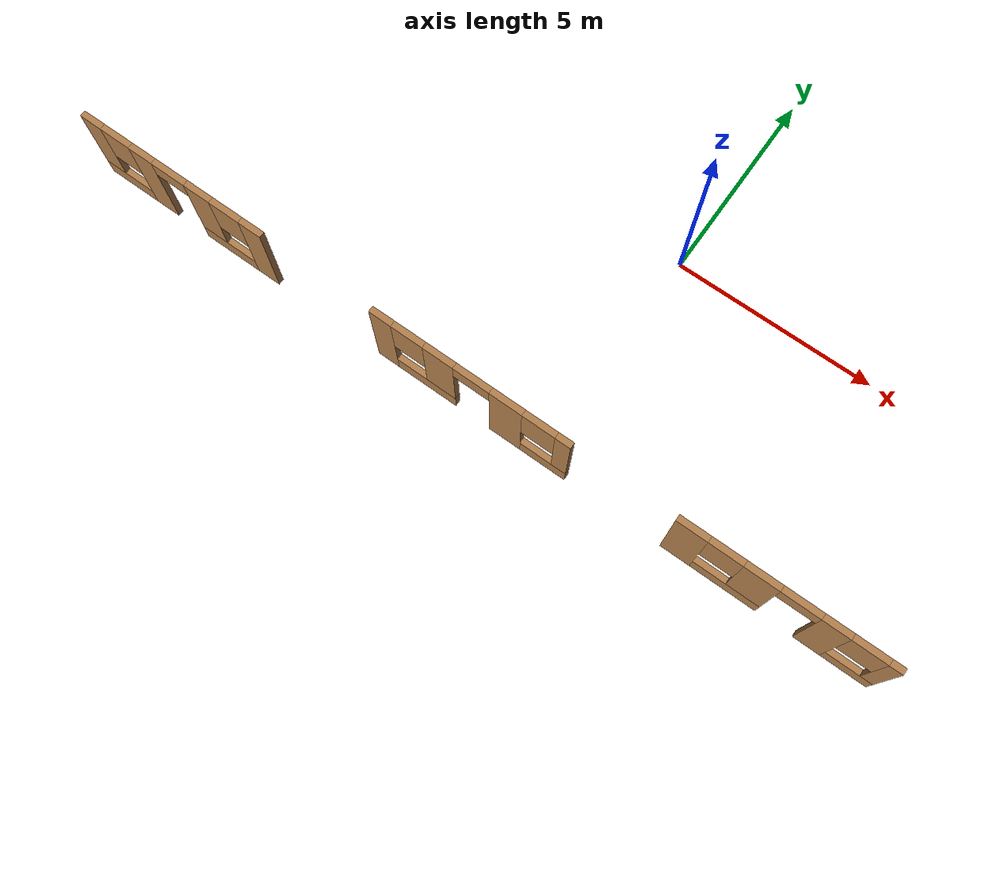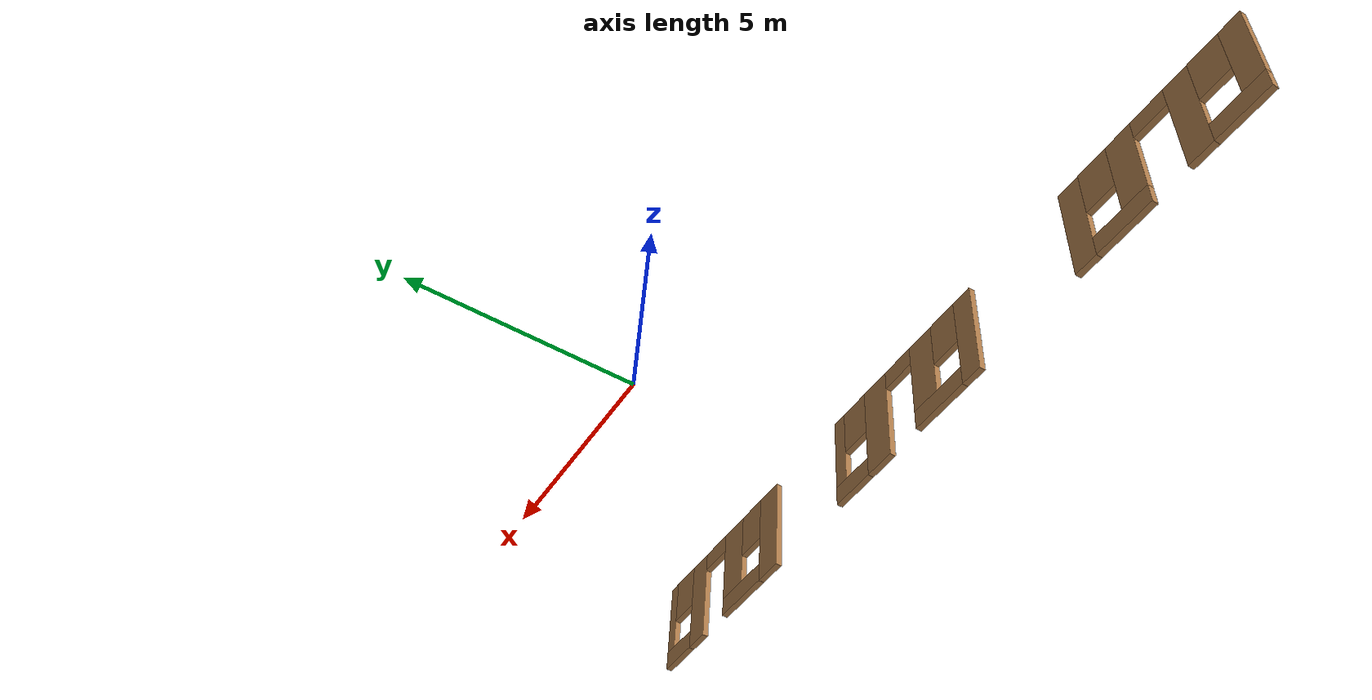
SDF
<?xml version='1.0'?>
<sdf version='1.7'>
  <model name='mail_delivery'>
    <pose>-2.01308 -2.84519 0 0 -0 0</pose>
    <link name='Wall_12'>
      <pose>0.204522 -2.7702 0 0 -0 0</pose>
      <visual name='Wall_12_Visual_0'>
        <pose>-2.22008 0 1.25 0 -0 0</pose>
        <geometry>
          <box>
            <size>0.55984 0.15 2.5</size>
          </box>
        </geometry>
        <material>
          <script>
            <uri>file://media/materials/scripts/gazebo.material</uri>
            <name>Gazebo/Wood</name>
          </script>
          <ambient>1 1 1 1</ambient>
        </material>
        <meta>
          <layer>0</layer>
        </meta>
      </visual>
      <collision name='Wall_12_Collision_0'>
        <geometry>
          <box>
            <size>0.55984 0.15 2.5</size>
          </box>
        </geometry>
        <pose>-2.22008 0 1.25 0 -0 0</pose>
      </collision>
      <visual name='Wall_12_Visual_1'>
        <pose>0.924853 0 1.25 0 -0 0</pose>
        <geometry>
          <box>
            <size>0.803125 0.15 2.5</size>
          </box>
        </geometry>
        <material>
          <script>
            <uri>file://media/materials/scripts/gazebo.material</uri>
            <name>Gazebo/Wood</name>
          </script>
          <ambient>1 1 1 1</ambient>
        </material>
        <meta>
          <layer>0</layer>
        </meta>
      </visual>
      <collision name='Wall_12_Collision_1'>
        <geometry>
          <box>
            <size>0.803125 0.15 2.5</size>
          </box>
        </geometry>
        <pose>0.924853 0 1.25 0 -0 0</pose>
      </collision>
      <visual name='Wall_12_Visual_2'>
        <pose>-1.15844 0 0.25 0 -0 0</pose>
        <geometry>
          <box>
            <size>1.56345 0.15 0.5</size>
          </box>
        </geometry>
        <material>
          <script>
            <uri>file://media/materials/scripts/gazebo.material</uri>
            <name>Gazebo/Wood</name>
          </script>
          <ambient>1 1 1 1</ambient>
        </material>
        <meta>
          <layer>0</layer>
        </meta>
      </visual>
      <collision name='Wall_12_Collision_2'>
        <geometry>
          <box>
            <size>1.56345 0.15 0.5</size>
          </box>
        </geometry>
        <pose>-1.15844 0 0.25 0 -0 0</pose>
      </collision>
      <visual name='Wall_12_Visual_3'>
        <pose>1.91321 0 0.25 0 -0 0</pose>
        <geometry>
          <box>
            <size>1.17359 0.15 0.5</size>
          </box>
        </geometry>
        <material>
          <script>
            <uri>file://media/materials/scripts/gazebo.material</uri>
            <name>Gazebo/Wood</name>
          </script>
          <ambient>1 1 1 1</ambient>
        </material>
        <meta>
          <layer>0</layer>
        </meta>
      </visual>
      <collision name='Wall_12_Collision_3'>
        <geometry>
          <box>
            <size>1.17359 0.15 0.5</size>
          </box>
        </geometry>
        <pose>1.91321 0 0.25 0 -0 0</pose>
      </collision>
      <visual name='Wall_12_Visual_4'>
        <pose>-0.758435 0 1.5 0 -0 0</pose>
        <geometry>
          <box>
            <size>0.76345 0.15 2</size>
          </box>
        </geometry>
        <material>
          <script>
            <uri>file://media/materials/scripts/gazebo.material</uri>
            <name>Gazebo/Wood</name>
          </script>
          <ambient>1 1 1 1</ambient>
        </material>
        <meta>
          <layer>0</layer>
        </meta>
      </visual>
      <collision name='Wall_12_Collision_4'>
        <geometry>
          <box>
            <size>0.76345 0.15 2</size>
          </box>
        </geometry>
        <pose>-0.758435 0 1.5 0 -0 0</pose>
      </collision>
      <visual name='Wall_12_Visual_5'>
        <pose>-0.758435 0 1.5 0 -0 0</pose>
        <geometry>
          <box>
            <size>0.76345 0.15 2</size>
          </box>
        </geometry>
        <material>
          <script>
            <uri>file://media/materials/scripts/gazebo.material</uri>
            <name>Gazebo/Wood</name>
          </script>
          <ambient>1 1 1 1</ambient>
        </material>
        <meta>
          <layer>0</layer>
        </meta>
      </visual>
      <collision name='Wall_12_Collision_5'>
        <geometry>
          <box>
            <size>0.76345 0.15 2</size>
          </box>
        </geometry>
        <pose>-0.758435 0 1.5 0 -0 0</pose>
      </collision>
      <visual name='Wall_12_Visual_6'>
        <pose>2.31321 0 1.5 0 -0 0</pose>
        <geometry>
          <box>
            <size>0.373585 0.15 2</size>
          </box>
        </geometry>
        <material>
          <script>
            <uri>file://media/materials/scripts/gazebo.material</uri>
            <name>Gazebo/Wood</name>
          </script>
          <ambient>1 1 1 1</ambient>
        </material>
        <meta>
          <layer>0</layer>
        </meta>
      </visual>
      <collision name='Wall_12_Collision_6'>
        <geometry>
          <box>
            <size>0.373585 0.15 2</size>
          </box>
        </geometry>
        <pose>2.31321 0 1.5 0 -0 0</pose>
      </collision>
      <visual name='Wall_12_Visual_7'>
        <pose>-1.54016 0 1.9 0 -0 0</pose>
        <geometry>
          <box>
            <size>0.8 0.15 1.2</size>
          </box>
        </geometry>
        <material>
          <script>
            <uri>file://media/materials/scripts/gazebo.material</uri>
            <name>Gazebo/Wood</name>
          </script>
          <ambient>1 1 1 1</ambient>
        </material>
        <meta>
          <layer>0</layer>
        </meta>
      </visual>
      <collision name='Wall_12_Collision_7'>
        <geometry>
          <box>
            <size>0.8 0.15 1.2</size>
          </box>
        </geometry>
        <pose>-1.54016 0 1.9 0 -0 0</pose>
      </collision>
      <visual name='Wall_12_Visual_8'>
        <pose>1.72642 0 1.9 0 -0 0</pose>
        <geometry>
          <box>
            <size>0.8 0.15 1.2</size>
          </box>
        </geometry>
        <material>
          <script>
            <uri>file://media/materials/scripts/gazebo.material</uri>
            <name>Gazebo/Wood</name>
          </script>
          <ambient>1 1 1 1</ambient>
        </material>
        <meta>
          <layer>0</layer>
        </meta>
      </visual>
      <collision name='Wall_12_Collision_8'>
        <geometry>
          <box>
            <size>0.8 0.15 1.2</size>
          </box>
        </geometry>
        <pose>1.72642 0 1.9 0 -0 0</pose>
      </collision>
      <visual name='Wall_12_Visual_9'>
        <pose>0.07329 0 2.25 0 -0 0</pose>
        <geometry>
          <box>
            <size>0.9 0.15 0.5</size>
          </box>
        </geometry>
        <material>
          <script>
            <uri>file://media/materials/scripts/gazebo.material</uri>
            <name>Gazebo/Wood</name>
          </script>
          <ambient>1 1 1 1</ambient>
        </material>
        <meta>
          <layer>0</layer>
        </meta>
      </visual>
      <collision name='Wall_12_Collision_9'>
        <geometry>
          <box>
            <size>0.9 0.15 0.5</size>
          </box>
        </geometry>
        <pose>0.07329 0 2.25 0 -0 0</pose>
      </collision>
      <visual name='Wall_12_Visual_10'>
        <pose>0.07329 0 2.25 0 -0 0</pose>
        <geometry>
          <box>
            <size>0.9 0.15 0.5</size>
          </box>
        </geometry>
        <material>
          <script>
            <uri>file://media/materials/scripts/gazebo.material</uri>
            <name>Gazebo/Wood</name>
          </script>
          <ambient>1 1 1 1</ambient>
        </material>
        <meta>
          <layer>0</layer>
        </meta>
      </visual>
      <collision name='Wall_12_Collision_10'>
        <geometry>
          <box>
            <size>0.9 0.15 0.5</size>
          </box>
        </geometry>
        <pose>0.07329 0 2.25 0 -0 0</pose>
      </collision>
    </link>
    <link name='Wall_16'>
      <pose>-7.65681 -2.7702 0 0 -0 3.14159</pose>
      <visual name='Wall_16_Visual_0'>
        <pose>-2.20364 0 1.25 0 -0 0</pose>
        <geometry>
          <box>
            <size>0.592727 0.15 2.5</size>
          </box>
        </geometry>
        <material>
          <script>
            <uri>file://media/materials/scripts/gazebo.material</uri>
            <name>Gazebo/Wood</name>
          </script>
          <ambient>1 1 1 1</ambient>
        </material>
        <meta>
          <layer>0</layer>
        </meta>
      </visual>
      <collision name='Wall_16_Collision_0'>
        <geometry>
          <box>
            <size>0.592727 0.15 2.5</size>
          </box>
        </geometry>
        <pose>-2.20364 0 1.25 0 -0 0</pose>
      </collision>
      <visual name='Wall_16_Visual_1'>
        <pose>0.812265 0 1.25 0 -0 0</pose>
        <geometry>
          <box>
            <size>0.644425 0.15 2.5</size>
          </box>
        </geometry>
        <material>
          <script>
            <uri>file://media/materials/scripts/gazebo.material</uri>
            <name>Gazebo/Wood</name>
          </script>
          <ambient>1 1 1 1</ambient>
        </material>
        <meta>
          <layer>0</layer>
        </meta>
      </visual>
      <collision name='Wall_16_Collision_1'>
        <geometry>
          <box>
            <size>0.644425 0.15 2.5</size>
          </box>
        </geometry>
        <pose>0.812265 0 1.25 0 -0 0</pose>
      </collision>
      <visual name='Wall_16_Visual_2'>
        <pose>-1.15861 0 0.25 0 -0 0</pose>
        <geometry>
          <box>
            <size>1.49733 0.15 0.5</size>
          </box>
        </geometry>
        <material>
          <script>
            <uri>file://media/materials/scripts/gazebo.material</uri>
            <name>Gazebo/Wood</name>
          </script>
          <ambient>1 1 1 1</ambient>
        </material>
        <meta>
          <layer>0</layer>
        </meta>
      </visual>
      <collision name='Wall_16_Collision_2'>
        <geometry>
          <box>
            <size>1.49733 0.15 0.5</size>
          </box>
        </geometry>
        <pose>-1.15861 0 0.25 0 -0 0</pose>
      </collision>
      <visual name='Wall_16_Visual_3'>
        <pose>1.81724 0 0.25 0 -0 0</pose>
        <geometry>
          <box>
            <size>1.36552 0.15 0.5</size>
          </box>
        </geometry>
        <material>
          <script>
            <uri>file://media/materials/scripts/gazebo.material</uri>
            <name>Gazebo/Wood</name>
          </script>
          <ambient>1 1 1 1</ambient>
        </material>
        <meta>
          <layer>0</layer>
        </meta>
      </visual>
      <collision name='Wall_16_Collision_3'>
        <geometry>
          <box>
            <size>1.36552 0.15 0.5</size>
          </box>
        </geometry>
        <pose>1.81724 0 0.25 0 -0 0</pose>
      </collision>
      <visual name='Wall_16_Visual_4'>
        <pose>-0.75861 0 1.5 0 -0 0</pose>
        <geometry>
          <box>
            <size>0.697325 0.15 2</size>
          </box>
        </geometry>
        <material>
          <script>
            <uri>file://media/materials/scripts/gazebo.material</uri>
            <name>Gazebo/Wood</name>
          </script>
          <ambient>1 1 1 1</ambient>
        </material>
        <meta>
          <layer>0</layer>
        </meta>
      </visual>
      <collision name='Wall_16_Collision_4'>
        <geometry>
          <box>
            <size>0.697325 0.15 2</size>
          </box>
        </geometry>
        <pose>-0.75861 0 1.5 0 -0 0</pose>
      </collision>
      <visual name='Wall_16_Visual_5'>
        <pose>-0.75861 0 1.5 0 -0 0</pose>
        <geometry>
          <box>
            <size>0.697325 0.15 2</size>
          </box>
        </geometry>
        <material>
          <script>
            <uri>file://media/materials/scripts/gazebo.material</uri>
            <name>Gazebo/Wood</name>
          </script>
          <ambient>1 1 1 1</ambient>
        </material>
        <meta>
          <layer>0</layer>
        </meta>
      </visual>
      <collision name='Wall_16_Collision_5'>
        <geometry>
          <box>
            <size>0.697325 0.15 2</size>
          </box>
        </geometry>
        <pose>-0.75861 0 1.5 0 -0 0</pose>
      </collision>
      <visual name='Wall_16_Visual_6'>
        <pose>2.21724 0 1.5 0 -0 0</pose>
        <geometry>
          <box>
            <size>0.565523 0.15 2</size>
          </box>
        </geometry>
        <material>
          <script>
            <uri>file://media/materials/scripts/gazebo.material</uri>
            <name>Gazebo/Wood</name>
          </script>
          <ambient>1 1 1 1</ambient>
        </material>
        <meta>
          <layer>0</layer>
        </meta>
      </visual>
      <collision name='Wall_16_Collision_6'>
        <geometry>
          <box>
            <size>0.565523 0.15 2</size>
          </box>
        </geometry>
        <pose>2.21724 0 1.5 0 -0 0</pose>
      </collision>
      <visual name='Wall_16_Visual_7'>
        <pose>-1.50727 0 1.9 0 -0 0</pose>
        <geometry>
          <box>
            <size>0.8 0.15 1.2</size>
          </box>
        </geometry>
        <material>
          <script>
            <uri>file://media/materials/scripts/gazebo.material</uri>
            <name>Gazebo/Wood</name>
          </script>
          <ambient>1 1 1 1</ambient>
        </material>
        <meta>
          <layer>0</layer>
        </meta>
      </visual>
      <collision name='Wall_16_Collision_7'>
        <geometry>
          <box>
            <size>0.8 0.15 1.2</size>
          </box>
        </geometry>
        <pose>-1.50727 0 1.9 0 -0 0</pose>
      </collision>
      <visual name='Wall_16_Visual_8'>
        <pose>1.53448 0 1.9 0 -0 0</pose>
        <geometry>
          <box>
            <size>0.8 0.15 1.2</size>
          </box>
        </geometry>
        <material>
          <script>
            <uri>file://media/materials/scripts/gazebo.material</uri>
            <name>Gazebo/Wood</name>
          </script>
          <ambient>1 1 1 1</ambient>
        </material>
        <meta>
          <layer>0</layer>
        </meta>
      </visual>
      <collision name='Wall_16_Collision_8'>
        <geometry>
          <box>
            <size>0.8 0.15 1.2</size>
          </box>
        </geometry>
        <pose>1.53448 0 1.9 0 -0 0</pose>
      </collision>
      <visual name='Wall_16_Visual_9'>
        <pose>0.040052 0 2.25 0 -0 0</pose>
        <geometry>
          <box>
            <size>0.9 0.15 0.5</size>
          </box>
        </geometry>
        <material>
          <script>
            <uri>file://media/materials/scripts/gazebo.material</uri>
            <name>Gazebo/Wood</name>
          </script>
          <ambient>1 1 1 1</ambient>
        </material>
        <meta>
          <layer>0</layer>
        </meta>
      </visual>
      <collision name='Wall_16_Collision_9'>
        <geometry>
          <box>
            <size>0.9 0.15 0.5</size>
          </box>
        </geometry>
        <pose>0.040052 0 2.25 0 -0 0</pose>
      </collision>
      <visual name='Wall_16_Visual_10'>
        <pose>0.040052 0 2.25 0 -0 0</pose>
        <geometry>
          <box>
            <size>0.9 0.15 0.5</size>
          </box>
        </geometry>
        <material>
          <script>
            <uri>file://media/materials/scripts/gazebo.material</uri>
            <name>Gazebo/Wood</name>
          </script>
          <ambient>1 1 1 1</ambient>
        </material>
        <meta>
          <layer>0</layer>
        </meta>
      </visual>
      <collision name='Wall_16_Collision_10'>
        <geometry>
          <box>
            <size>0.9 0.15 0.5</size>
          </box>
        </geometry>
        <pose>0.040052 0 2.25 0 -0 0</pose>
      </collision>
    </link>
    <link name='Wall_18'>
      <pose>7.65681 -2.7702 0 0 -0 0</pose>
      <visual name='Wall_18_Visual_0'>
        <pose>-2.13081 0 1.25 0 -0 0</pose>
        <geometry>
          <box>
            <size>0.738378 0.15 2.5</size>
          </box>
        </geometry>
        <material>
          <script>
            <uri>file://media/materials/scripts/gazebo.material</uri>
            <name>Gazebo/Wood</name>
          </script>
          <ambient>1 1 1 1</ambient>
        </material>
        <meta>
          <layer>0</layer>
        </meta>
      </visual>
      <collision name='Wall_18_Collision_0'>
        <geometry>
          <box>
            <size>0.738378 0.15 2.5</size>
          </box>
        </geometry>
        <pose>-2.13081 0 1.25 0 -0 0</pose>
      </collision>
      <visual name='Wall_18_Visual_1'>
        <pose>1.07694 0 1.25 0 -0 0</pose>
        <geometry>
          <box>
            <size>0.644425 0.15 2.5</size>
          </box>
        </geometry>
        <material>
          <script>
            <uri>file://media/materials/scripts/gazebo.material</uri>
            <name>Gazebo/Wood</name>
          </script>
          <ambient>1 1 1 1</ambient>
        </material>
        <meta>
          <layer>0</layer>
        </meta>
      </visual>
      <collision name='Wall_18_Collision_1'>
        <geometry>
          <box>
            <size>0.644425 0.15 2.5</size>
          </box>
        </geometry>
        <pose>1.07694 0 1.25 0 -0 0</pose>
      </collision>
      <visual name='Wall_18_Visual_2'>
        <pose>-0.953447 0 0.25 0 -0 0</pose>
        <geometry>
          <box>
            <size>1.61635 0.15 0.5</size>
          </box>
        </geometry>
        <material>
          <script>
            <uri>file://media/materials/scripts/gazebo.material</uri>
            <name>Gazebo/Wood</name>
          </script>
          <ambient>1 1 1 1</ambient>
        </material>
        <meta>
          <layer>0</layer>
        </meta>
      </visual>
      <collision name='Wall_18_Collision_2'>
        <geometry>
          <box>
            <size>1.61635 0.15 0.5</size>
          </box>
        </geometry>
        <pose>-0.953447 0 0.25 0 -0 0</pose>
      </collision>
      <visual name='Wall_18_Visual_3'>
        <pose>1.94958 0 0.25 0 -0 0</pose>
        <geometry>
          <box>
            <size>1.10085 0.15 0.5</size>
          </box>
        </geometry>
        <material>
          <script>
            <uri>file://media/materials/scripts/gazebo.material</uri>
            <name>Gazebo/Wood</name>
          </script>
          <ambient>1 1 1 1</ambient>
        </material>
        <meta>
          <layer>0</layer>
        </meta>
      </visual>
      <collision name='Wall_18_Collision_3'>
        <geometry>
          <box>
            <size>1.10085 0.15 0.5</size>
          </box>
        </geometry>
        <pose>1.94958 0 0.25 0 -0 0</pose>
      </collision>
      <visual name='Wall_18_Visual_4'>
        <pose>-0.553447 0 1.5 0 -0 0</pose>
        <geometry>
          <box>
            <size>0.81635 0.15 2</size>
          </box>
        </geometry>
        <material>
          <script>
            <uri>file://media/materials/scripts/gazebo.material</uri>
            <name>Gazebo/Wood</name>
          </script>
          <ambient>1 1 1 1</ambient>
        </material>
        <meta>
          <layer>0</layer>
        </meta>
      </visual>
      <collision name='Wall_18_Collision_4'>
        <geometry>
          <box>
            <size>0.81635 0.15 2</size>
          </box>
        </geometry>
        <pose>-0.553447 0 1.5 0 -0 0</pose>
      </collision>
      <visual name='Wall_18_Visual_5'>
        <pose>-0.553447 0 1.5 0 -0 0</pose>
        <geometry>
          <box>
            <size>0.81635 0.15 2</size>
          </box>
        </geometry>
        <material>
          <script>
            <uri>file://media/materials/scripts/gazebo.material</uri>
            <name>Gazebo/Wood</name>
          </script>
          <ambient>1 1 1 1</ambient>
        </material>
        <meta>
          <layer>0</layer>
        </meta>
      </visual>
      <collision name='Wall_18_Collision_5'>
        <geometry>
          <box>
            <size>0.81635 0.15 2</size>
          </box>
        </geometry>
        <pose>-0.553447 0 1.5 0 -0 0</pose>
      </collision>
      <visual name='Wall_18_Visual_6'>
        <pose>2.34958 0 1.5 0 -0 0</pose>
        <geometry>
          <box>
            <size>0.300847 0.15 2</size>
          </box>
        </geometry>
        <material>
          <script>
            <uri>file://media/materials/scripts/gazebo.material</uri>
            <name>Gazebo/Wood</name>
          </script>
          <ambient>1 1 1 1</ambient>
        </material>
        <meta>
          <layer>0</layer>
        </meta>
      </visual>
      <collision name='Wall_18_Collision_6'>
        <geometry>
          <box>
            <size>0.300847 0.15 2</size>
          </box>
        </geometry>
        <pose>2.34958 0 1.5 0 -0 0</pose>
      </collision>
      <visual name='Wall_18_Visual_7'>
        <pose>-1.36162 0 1.9 0 -0 0</pose>
        <geometry>
          <box>
            <size>0.8 0.15 1.2</size>
          </box>
        </geometry>
        <material>
          <script>
            <uri>file://media/materials/scripts/gazebo.material</uri>
            <name>Gazebo/Wood</name>
          </script>
          <ambient>1 1 1 1</ambient>
        </material>
        <meta>
          <layer>0</layer>
        </meta>
      </visual>
      <collision name='Wall_18_Collision_7'>
        <geometry>
          <box>
            <size>0.8 0.15 1.2</size>
          </box>
        </geometry>
        <pose>-1.36162 0 1.9 0 -0 0</pose>
      </collision>
      <visual name='Wall_18_Visual_8'>
        <pose>1.79915 0 1.9 0 -0 0</pose>
        <geometry>
          <box>
            <size>0.8 0.15 1.2</size>
          </box>
        </geometry>
        <material>
          <script>
            <uri>file://media/materials/scripts/gazebo.material</uri>
            <name>Gazebo/Wood</name>
          </script>
          <ambient>1 1 1 1</ambient>
        </material>
        <meta>
          <layer>0</layer>
        </meta>
      </visual>
      <collision name='Wall_18_Collision_8'>
        <geometry>
          <box>
            <size>0.8 0.15 1.2</size>
          </box>
        </geometry>
        <pose>1.79915 0 1.9 0 -0 0</pose>
      </collision>
      <visual name='Wall_18_Visual_9'>
        <pose>0.304728 0 2.25 0 -0 0</pose>
        <geometry>
          <box>
            <size>0.9 0.15 0.5</size>
          </box>
        </geometry>
        <material>
          <script>
            <uri>file://media/materials/scripts/gazebo.material</uri>
            <name>Gazebo/Wood</name>
          </script>
          <ambient>1 1 1 1</ambient>
        </material>
        <meta>
          <layer>0</layer>
        </meta>
      </visual>
      <collision name='Wall_18_Collision_9'>
        <geometry>
          <box>
            <size>0.9 0.15 0.5</size>
          </box>
        </geometry>
        <pose>0.304728 0 2.25 0 -0 0</pose>
      </collision>
      <visual name='Wall_18_Visual_10'>
        <pose>0.304728 0 2.25 0 -0 0</pose>
        <geometry>
          <box>
            <size>0.9 0.15 0.5</size>
          </box>
        </geometry>
        <material>
          <script>
            <uri>file://media/materials/scripts/gazebo.material</uri>
            <name>Gazebo/Wood</name>
          </script>
          <ambient>1 1 1 1</ambient>
        </material>
        <meta>
          <layer>0</layer>
        </meta>
      </visual>
      <collision name='Wall_18_Collision_10'>
        <geometry>
          <box>
            <size>0.9 0.15 0.5</size>
          </box>
        </geometry>
        <pose>0.304728 0 2.25 0 -0 0</pose>
      </collision>
    </link>
    <static>1</static>
  </model>
</sdf>
